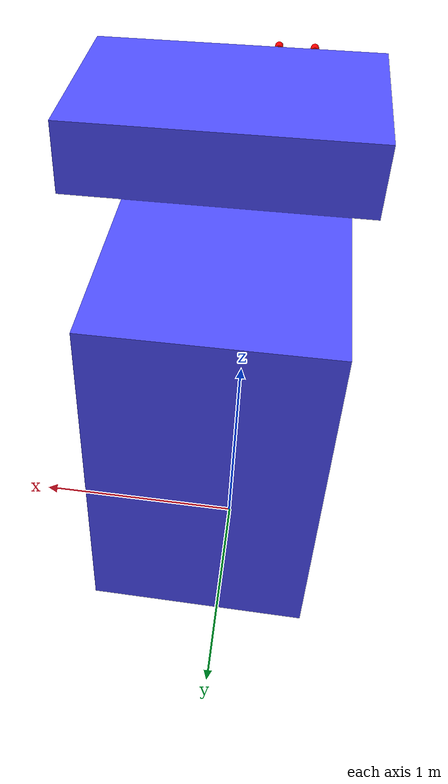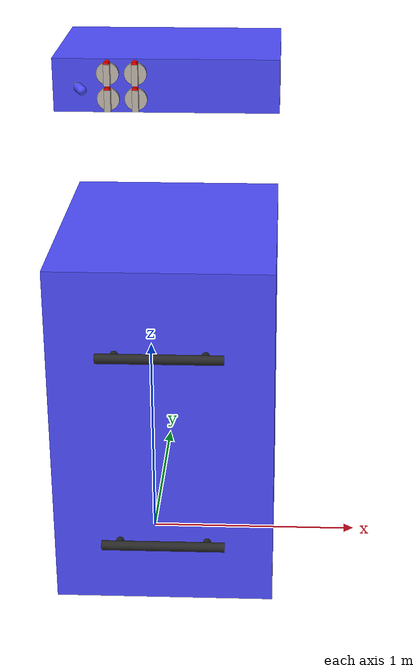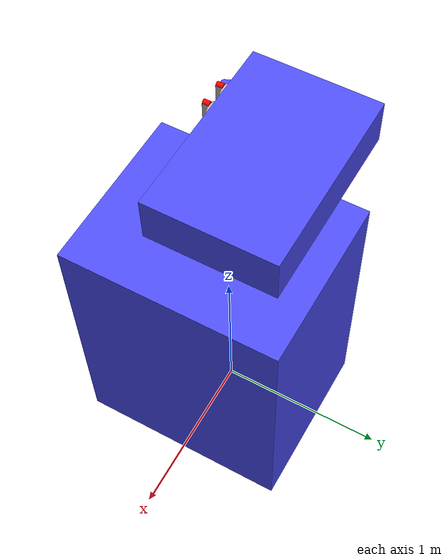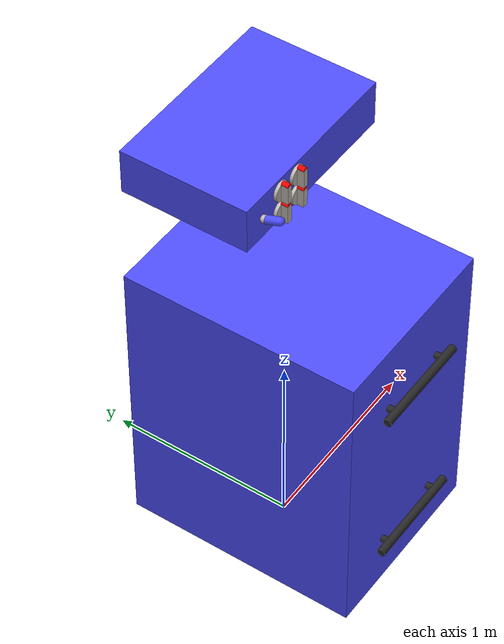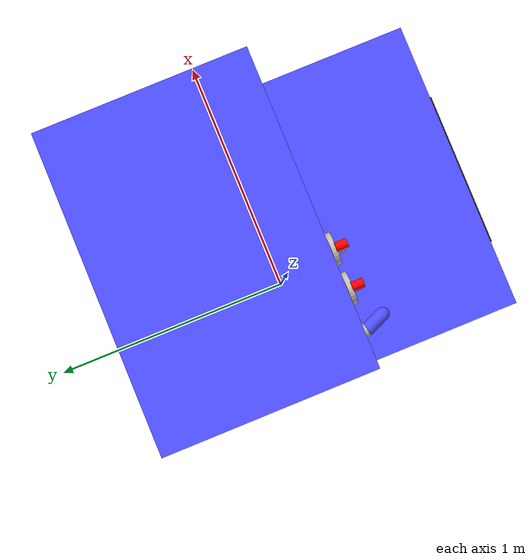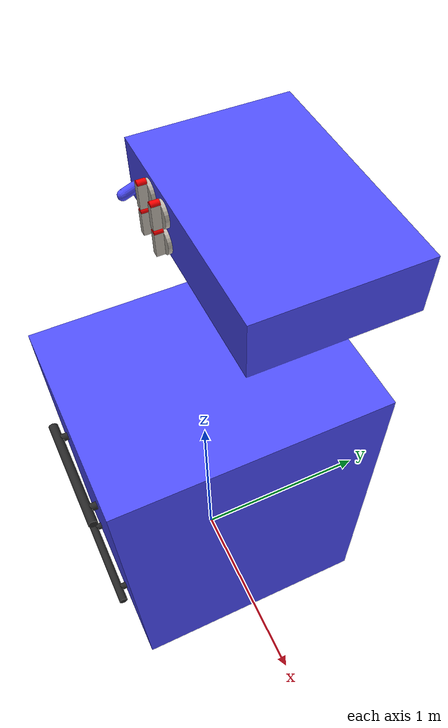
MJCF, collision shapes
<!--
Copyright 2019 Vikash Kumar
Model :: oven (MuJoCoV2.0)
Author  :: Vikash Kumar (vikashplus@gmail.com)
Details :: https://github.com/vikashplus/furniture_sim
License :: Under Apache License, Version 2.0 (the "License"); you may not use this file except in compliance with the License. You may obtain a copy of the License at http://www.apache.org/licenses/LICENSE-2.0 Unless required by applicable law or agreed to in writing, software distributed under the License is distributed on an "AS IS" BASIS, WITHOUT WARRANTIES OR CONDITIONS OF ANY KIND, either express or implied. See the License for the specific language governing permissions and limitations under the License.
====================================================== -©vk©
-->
<mujoco model="Oven">
    <compiler angle="radian" meshdir="" texturedir=""/>
    <include file="../furniture_sim/oven/oven_asset.xml"/>

    <worldbody>

        <body>
            <include file="../furniture_sim/oven/oven_body.xml"/>
        </body>

    </worldbody>

</mujoco>

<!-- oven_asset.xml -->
<mujocoinclude>
    <compiler inertiafromgeom="auto" inertiagrouprange="4 4" angle="radian"/>

    <asset>
        <mesh file="../furniture_sim/oven/meshes/hood.stl" name="hood"/>
        <mesh file="../furniture_sim/oven/meshes/lightswitch.stl" name="lightswitch"/>
        <mesh file="../furniture_sim/oven/meshes/lightswitchbase.stl" name="lightswitchbase"/>
        <mesh file="../furniture_sim/oven/meshes/knob.stl" name="knob"/>
        <mesh file="../furniture_sim/oven/meshes/stoverim.stl" name="stoverim"/>
        <mesh file="../furniture_sim/oven/meshes/burnerplate.stl" name="burnerplate"/>
        <mesh file="../furniture_sim/oven/meshes/ovenhandle.stl" name="ovenhandle"/>
        <mesh file="../furniture_sim/oven/meshes/oven.stl" name="oven"/>
        <mesh file="../furniture_sim/oven/meshes/oventop.stl" name="oventop"/>
        <mesh file="../furniture_sim/oven/meshes/ovenwindow.stl" name="ovenwindow"/>

        <texture name="T_oven_wood" type="cube" height="1" width="1" file="../furniture_sim/common/textures/wood0.png"/>
        <texture name="T_oven_metal" type="cube" height="1" width="1" file="../furniture_sim/common/textures/metal0.png"/>

        <material name="oven_wood" texture="T_oven_wood" texrepeat="3 3" reflectance="0.7" shininess=".4" texuniform="false"/>
        <material name="oven_metal" rgba="1 1 1 1" texture="T_oven_metal" texrepeat="3 3" reflectance="1" shininess="1" texuniform="false"/>
        <material name="oven_black" rgba=".15 .15 .15 1" reflectance=".2" shininess=".2" />
        <material name="oven_burner" rgba="2 0 0 1" reflectance=".2" shininess=".2" />
        <material name="oven_block" rgba=".1 .1 .1 1"/>
        <material name="oven_collision_blue" rgba="0.3 0.3 1.0 0.5" shininess="0" specular="0"/>
    </asset>

    <default>
        <default class="oven">
            <joint armature="0.001" damping="2" limited="true"/>
            <geom conaffinity="0" contype="0" group="1" material="oven_metal" type="mesh"/>
            <light directional="false" castshadow="true" attenuation="0.03 0.03 0.03" cutoff="100" exponent="25" diffuse=".7 .65 .65" specular=".3 .3 .3"/>
            <default class="oven_collision">
                <geom conaffinity="1" condim="3" contype="0" group="4" margin="0.001" material="oven_collision_blue" type="mesh"/>
            </default>
        </default>
    </default>

    <equality>
        <joint polycoef="0 174 0 0 0" joint1="knob1_joint" joint2="burner1_joint"/>
        <joint polycoef="0 174 0 0 0" joint1="knob2_joint" joint2="burner2_joint"/>
        <joint polycoef="0 174 0 0 0" joint1="knob3_joint" joint2="burner3_joint"/>
        <joint polycoef="0 174 0 0 0" joint1="knob4_joint" joint2="burner4_joint"/>
        <joint polycoef="0 14 0 0 0" joint1="lightswitch_joint" joint2="light_joint"/>
    </equality>

    <sensor>
        <jointpos name='knob1_joint' joint= 'knob1_joint'/>
        <jointpos name='knob2_joint' joint= 'knob2_joint'/>
        <jointpos name='knob3_joint' joint= 'knob3_joint'/>
        <jointpos name='knob4_joint' joint= 'knob4_joint'/>
        <jointpos name='lightswitch_joint' joint= 'lightswitch_joint'/>
    </sensor>

</mujocoinclude>

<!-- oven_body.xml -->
<mujocoinclude>
    <light class="oven" name="ovenlighta" pos="0 .2 2.5" dir="0 -.02 -.1" attenuation="0.05 0.05 0.05" cutoff="75" diffuse=".7 .65 .65" specular=".3 .3 .3"/>

    <body name="ovenroot" childclass="oven" pos="0.115 -0.2921 0.9834">
        <geom material="oven_black" mesh="burnerplate" pos="-0.24 -0.119 0.629"/>
        <geom material="oven_black" mesh="burnerplate" pos="-0.237 0.322 0.629"/>
        <geom material="oven_black" mesh="burnerplate" pos="0.204 0.322 0.629"/>
        <geom material="oven_black" mesh="burnerplate" pos="0.206 -0.119 0.629"/>
        <geom material="oven_black" euler="1.57 0 0" pos="-.215 -0.36 -0.682" size="0.018 0.03" type="cylinder"/>
        <geom material="oven_black" euler="1.57 0 0" pos=".184 -0.36 -0.682" size="0.018 0.03" type="cylinder"/>
        <geom material="oven_black" euler="0 1.57 0" pos="-0.015 -0.39 -0.682" size="0.022 0.28" type="cylinder"/>
        <geom material="oven_black" euler="1.57 0 0" pos="-.215 -0.36 0.254" size="0.018 0.03" type="cylinder"/>
        <geom material="oven_black" euler="1.57 0 0" pos=".184 -0.36 0.254" size="0.018 0.03" type="cylinder"/>
        <geom material="oven_black" euler="0 1.57 0" pos="-0.015 -0.39 0.254" size="0.022 0.28" type="cylinder"/>
        <geom material="oven_black" mesh="oventop" pos="-0.017 0.275 0.607"/>
        <geom material="oven_black" mesh="ovenwindow" pos="0.9793 0.2921 -1.1877"/>
        <geom material="oven_black" pos="-0.011 -.327 -.05" size="0.35 0.016 0.22" type="box"/>
        <geom mesh="stoverim" pos="0.203 0.323 0.619"/>
        <geom mesh="stoverim" pos="-0.24 -0.12 0.619"/>
        <geom mesh="stoverim" pos="-0.237 0.323 0.619"/>
        <geom mesh="stoverim" pos="0.207 -0.12 0.619"/>

        <geom mesh="oven" pos="-.115 .295 -.98"/>

        <geom class="oven_collision" pos="-0.017 0.28 -0.175" size="0.5 0.625 0.81" type="box" mass="5"/>
        <geom class="oven_collision" euler="1.57 0 0" pos="-.215 -0.36 -0.682" size="0.018 0.03" type="cylinder" mass=".2"/>
        <geom class="oven_collision" euler="1.57 0 0" pos=".184 -0.36 -0.682" size="0.018 0.03" type="cylinder" mass=".2"/>
        <geom class="oven_collision" euler="0 1.57 0" pos="-0.015 -0.39 -0.682" size="0.022 0.28" type="cylinder" mass=".2"/>
        <geom class="oven_collision" euler="1.57 0 0" pos="-.215 -0.36 0.254" size="0.018 0.03" type="cylinder" mass=".2"/>
        <geom class="oven_collision" euler="1.57 0 0" pos=".184 -0.36 0.254" size="0.018 0.03" type="cylinder" mass=".2"/>
        <geom class="oven_collision" euler="0 1.57 0" pos="-0.015 -0.39 0.254" size="0.022 0.28" type="cylinder" mass=".2"/>
        <body name="knob 1" euler="1.57 0 0" pos="-0.148 0.22 1.243">
            <joint name="knob1_joint" axis="0 0 1" type="hinge" limited="true" range="-1.57 0"/>
            <geom type="box" pos="0 0 .038" size=".014 .048 .018"/>
            <geom type="cylinder" pos="0 0 .013" size=".05 .008"/>
            <geom type="cylinder" pos="0 0.048 .037" size=".014 .018" rgba="1 0 0 1"/>

            <geom class="oven_collision" type="box" pos="0 0 .038" size=".014 .048 .018" mass=".01"/>
            <geom class="oven_collision" type="cylinder" pos="0 0 .013" size=".05 .008" mass=".01"/>
            <site type="sphere" name="knob1_site" pos="0 0 .038" size=".01" group="3" rgba="1 1 0 1"/>
        </body>
        <body name="Burner 1" pos="0.206 -0.119 0.61">
            <inertial pos="0 0 0" mass=".01" diaginertia="0.001 0.001 0.001"/>
            <joint name="burner1_joint" axis="0 0 -1" type="slide" limited="true" range="-.009 0"/>
            <geom material="oven_burner" size="0.1 0.01" type="cylinder"/>
        </body>
        <body name="knob 2" euler="1.57 0 0" pos="-0.271 0.22 1.243">
            <joint name="knob2_joint" axis="0 0 1" type="hinge" limited="true" range="-1.57 0"/>
            <geom type="box" pos="0 0 .038" size=".014 .048 .018"/>
            <geom type="cylinder" pos="0 0 .013" size=".05 .008"/>
            <geom type="cylinder" pos="0 0.048 .037" size=".014 .018" rgba="1 0 0 1"/>

            <geom class="oven_collision" type="box" pos="0 0 .038" size=".014 .048 .018" mass=".01"/>
            <geom class="oven_collision" type="cylinder" pos="0 0 .013" size=".05 .008" mass=".01"/>
            <site type="sphere" name="knob2_site" pos="0 0 .038" size=".01" group="3" rgba="0 0 1 1"/>
        </body>
        <body name="Burner 2" pos="-0.24 -0.119 0.61">
            <inertial pos="0 0 0" mass=".01" diaginertia="0.001 0.001 0.001"/>
            <joint name="burner2_joint" axis="0 0 -1" type="slide" limited="true" stiffness="1" range="-.009 0"/>
            <geom material="oven_burner" size="0.1 0.01" type="cylinder" group="1"/>
        </body>
        <body name="knob 3" euler="1.57 0 0" pos="-0.148 0.22 1.357">
            <joint name="knob3_joint" axis="0 0 1" type="hinge" limited="true" range="-1.57 0"/>
            <geom type="box" pos="0 0 .038" size=".014 .048 .018"/>
            <geom type="cylinder" pos="0 0 .013" size=".05 .008"/>
            <geom type="cylinder" pos="0 0.048 .037" size=".014 .018" rgba="1 0 0 1"/>

            <geom class="oven_collision" type="box" pos="0 0 .038" size=".014 .048 .018" mass=".01"/>
            <geom class="oven_collision" type="cylinder" pos="0 0 .013" size=".05 .008" mass=".01"/>
            <site type="sphere" name="knob3_site" pos="0 0 .038" size=".01" group="3" rgba="0 1 0 1"/>
        </body>
        <body name="Burner 3" pos="0.204 0.322 0.61">
            <inertial pos="0 0 0" mass=".01" diaginertia="0.001 0.001 0.001"/>
            <joint name="burner3_joint" axis="0 0 -1" type="slide" limited="true" stiffness="1" range="-.009 0"/>
            <geom material="oven_burner" size="0.1 0.01" type="cylinder" group="1"/>
        </body>
        <body name="knob 4" euler="1.57 0 0" pos="-0.271 0.22 1.357">
            <joint name="knob4_joint" axis="0 0 1" type="hinge" limited="true" range="-1.57 0"/>
            <geom type="box" pos="0 0 .038" size=".014 .048 .018"/>
            <geom type="cylinder" pos="0 0 .013" size=".05 .008"/>
            <geom type="cylinder" pos="0 0.048 .037" size=".014 .018" rgba="1 0 0 1"/>

            <geom class="oven_collision" type="box" pos="0 0 .038" size=".014 .048 .018" mass=".01"/>
            <geom class="oven_collision" type="cylinder" pos="0 0 .013" size=".05 .008" mass=".01"/>
            <site type="sphere" name="knob4_site" pos="0 0 .038" size=".01" group="3" rgba="1 0 0 1"/>
        </body>
        <body name="Burner 4" pos="-0.237 0.322 0.61">
            <inertial pos="0 0 0" mass=".01" diaginertia="0.001 0.001 0.001"/>
            <joint name="burner4_joint" axis="0 0 -1" type="slide" limited="true" stiffness="1" range="-.009 0"/>
            <geom material="oven_burner" size="0.1 0.01" type="cylinder" group="1"/>
        </body>
    </body>
    <body name="hoodroot" pos="0.1 0.188 2.33" childclass="oven">
        <geom material="oven_black" mesh="hood" pos="-0.1 -0.2896 -2.329"/>
        <geom class="oven_collision" pos="0 0.073 -0.046" size="0.502 0.336 0.12" type="box" mass="2"/>
        <body name="lightswitchbaseroot" pos="-0.4 -0.2473 -0.05" >
            <geom mesh="lightswitchbase" pos="0 -0.0123 0" euler="-1.57 0 0"/>
            <body name="lightswitchroot">
                <inertial pos="-0.0046 0.35 0.0131" mass=".1" diaginertia="0.001 0.001 0.001"/>
                <joint axis="0 0 1" limited="true" name="lightswitch_joint" frictionloss="1" range="-.7 0"/>
                <geom pos="0.0252 -0.06 0" euler="-1.57 -.4 0" size="0.02 0.035" type="capsule"/>
                <geom class="oven_collision" euler="-1.57 -.4 0" pos="0.0263 -0.065 0" size="0.021 0.03" type="capsule" mass=".01"/>
                <site type="sphere" name="light_site" pos="0.0315 -0.075 0" size=".01" group="3" rgba="1 0 0 1"/>
            </body>
        </body>
        <body name="lightblock_hinge" pos="-0.0044 -0.3 -0.1361">
            <inertial pos="-0.0046 0.35 0.0131" mass=".01" diaginertia="0.001 0.001 0.001"/>
            <joint axis="0 0 -1" type="slide" limited="true" name="light_joint" frictionloss="1" range="-.05 0"/>
            <geom material="oven_block" pos="-0.008 0.4 -0.01" size="0.4 0.3 0.015" type="box"/>
        </body>
    </body>
</mujocoinclude>
